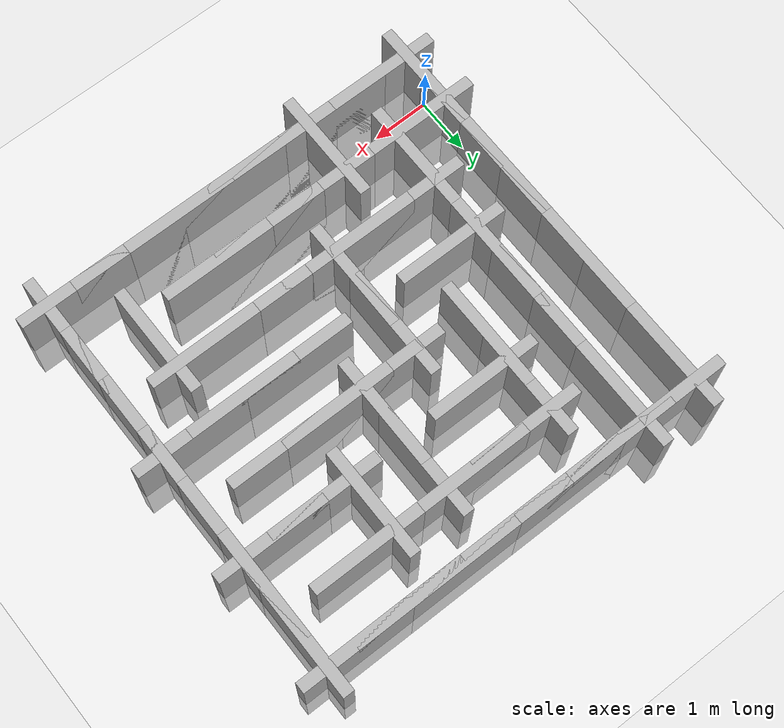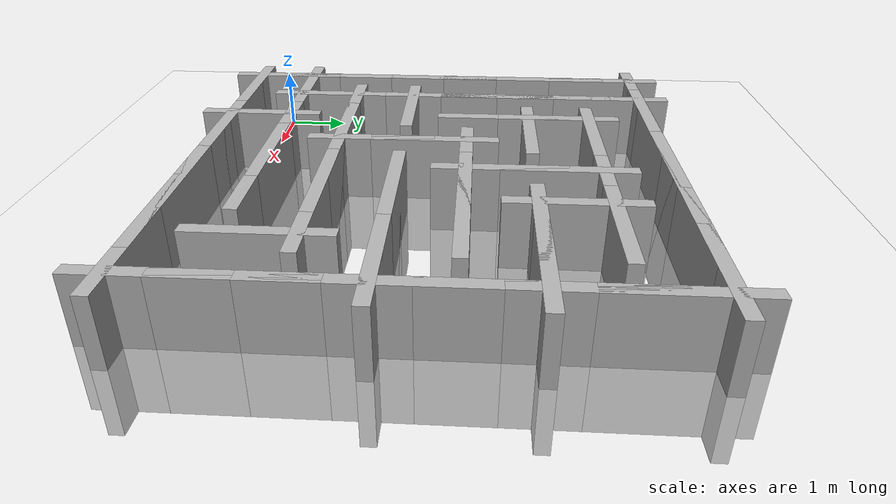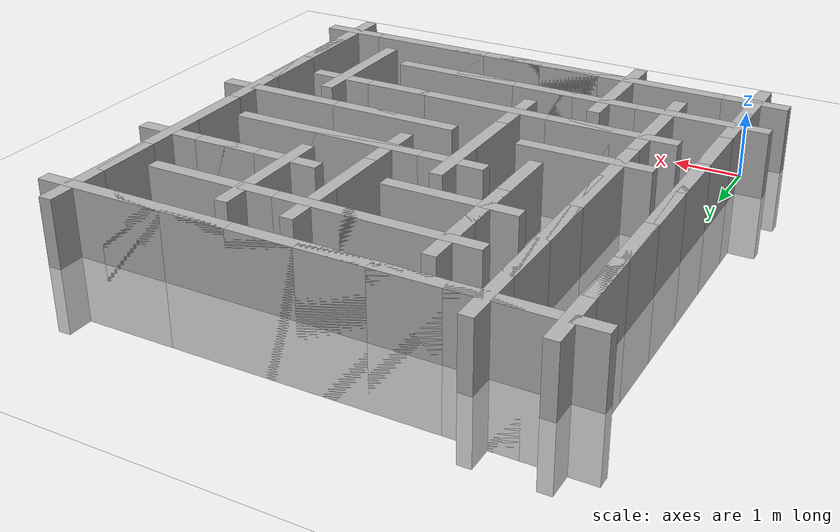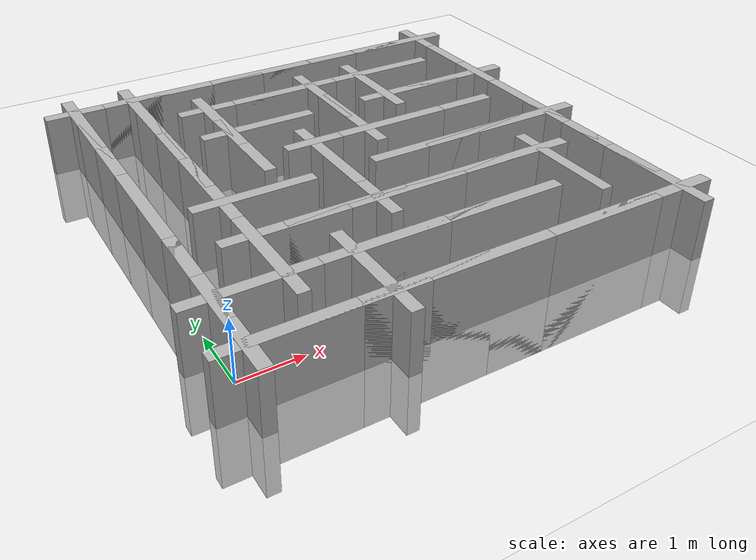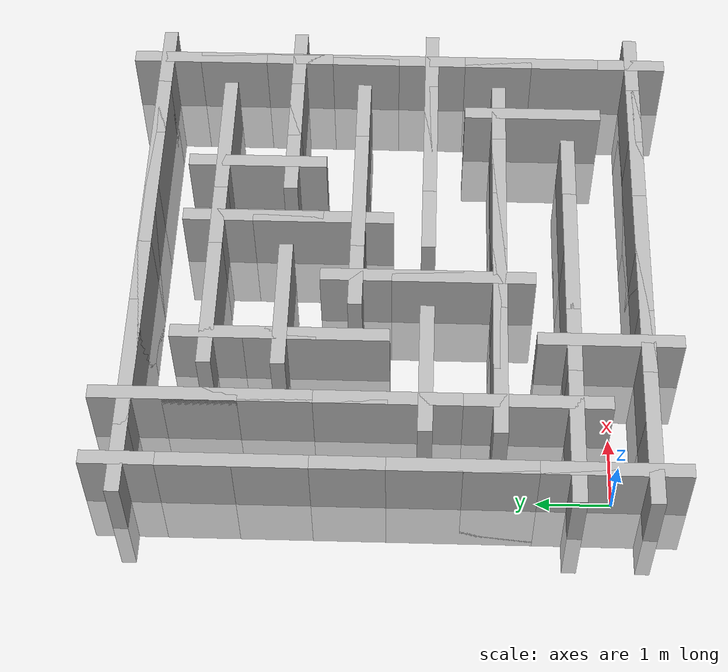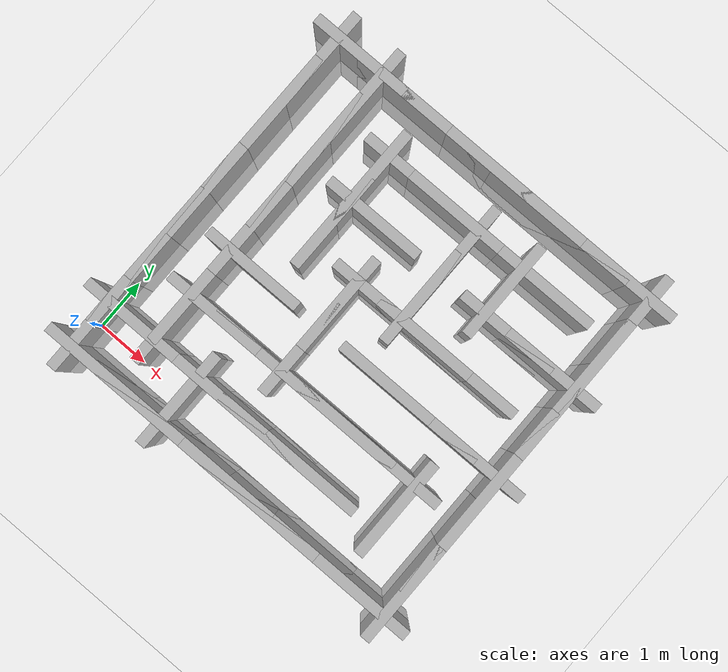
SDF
<?xml version="1.0" ?>
<sdf version="1.10">
  <world name='maze_world'>
    <plugin
      filename="gz-sim-physics-system"
      name="gz::sim::systems::Physics">
    </plugin>

    <plugin
      filename="gz-sim-user-commands-system"
      name="gz::sim::systems::UserCommands">
    </plugin>

    <plugin
      filename="gz-sim-scene-broadcaster-system"
      name="gz::sim::systems::SceneBroadcaster">
    </plugin>
    <plugin
        filename="libgz-sim-sensors-system.so"
        name="gz::sim::systems::Sensors">
    </plugin>
    <plugin
        filename="libgz-sim-imu-system.so"
        name="gz::sim::systems::Imu">
    </plugin>
    <plugin
        filename="libgz-sim-navsat-system.so"
        name="gz::sim::systems::NavSat">
    </plugin>

    <!-- Ground plane -->
    <model name="ground_plane">
      <static>true</static>
      <link name="link">
        <collision name="collision">
          <geometry>
            <plane><normal>0 0 1</normal></plane>
          </geometry>
        </collision>
        <visual name="visual">
          <geometry>
            <plane>
              <normal>0 0 1</normal>
              <size>60 60</size>
            </plane>
          </geometry>
          <material>
            <diffuse>1.0 1.0 1.0 1</diffuse>
          </material>
        </visual>
      </link>
    </model>

    <model name='Maze_ng'>
    <static>true</static>
	<pose>0 0 0 0 0 0</pose>

	<link name='Wall_0_0_0'>
		<pose>0 0 0 0 0 -1.570795</pose>
		<self_collide>0</self_collide>
		<kinematic>0</kinematic>
		<visual name='Wall_Visual'>
			<pose>0 0 0 0 0 0 </pose>
			<geometry>
				<box>
					<size>2 0.2 2</size>
				</box>
			</geometry>
			<cast_shadows>1</cast_shadows>
			<material><diffuse>0.7 0.7 0.7 1</diffuse></material>
		</visual>
		<collision name='Wall_Collision'>
			<laser_retro>0</laser_retro>
			<max_contacts>10</max_contacts>
			<pose>0 0 0 0 -0 0</pose>
			<geometry>
				<box>
					<size>2 0.2 2</size>
				</box>
			</geometry>
		</collision>
	</link>

	<link name='Wall_0_0_3'>
		<pose>0.5 -0.5 0 0 0 0</pose>
		<self_collide>0</self_collide>
		<kinematic>0</kinematic>
		<visual name='Wall_Visual'>
			<pose>0 0 0 0 0 0 </pose>
			<geometry>
				<box>
					<size>2 0.2 2</size>
				</box>
			</geometry>
			<cast_shadows>1</cast_shadows>
			<material><diffuse>0.7 0.7 0.7 1</diffuse></material>
		</visual>
		<collision name='Wall_Collision'>
			<laser_retro>0</laser_retro>
			<max_contacts>10</max_contacts>
			<pose>0 0 0 0 -0 0</pose>
			<geometry>
				<box>
					<size>2 0.2 2</size>
				</box>
			</geometry>
		</collision>
	</link>

	<link name='Wall_0_1_0'>
		<pose>0 1 0 0 0 -1.570795</pose>
		<self_collide>0</self_collide>
		<kinematic>0</kinematic>
		<visual name='Wall_Visual'>
			<pose>0 0 0 0 0 0 </pose>
			<geometry>
				<box>
					<size>2 0.2 2</size>
				</box>
			</geometry>
			<cast_shadows>1</cast_shadows>
			<material><diffuse>0.7 0.7 0.7 1</diffuse></material>
		</visual>
		<collision name='Wall_Collision'>
			<laser_retro>0</laser_retro>
			<max_contacts>10</max_contacts>
			<pose>0 0 0 0 -0 0</pose>
			<geometry>
				<box>
					<size>2 0.2 2</size>
				</box>
			</geometry>
		</collision>
	</link>

	<link name='Wall_0_1_3'>
		<pose>0.5 0.5 0 0 0 0</pose>
		<self_collide>0</self_collide>
		<kinematic>0</kinematic>
		<visual name='Wall_Visual'>
			<pose>0 0 0 0 0 0 </pose>
			<geometry>
				<box>
					<size>2 0.2 2</size>
				</box>
			</geometry>
			<cast_shadows>1</cast_shadows>
			<material><diffuse>0.7 0.7 0.7 1</diffuse></material>
		</visual>
		<collision name='Wall_Collision'>
			<laser_retro>0</laser_retro>
			<max_contacts>10</max_contacts>
			<pose>0 0 0 0 -0 0</pose>
			<geometry>
				<box>
					<size>2 0.2 2</size>
				</box>
			</geometry>
		</collision>
	</link>

	<link name='Wall_0_2_0'>
		<pose>0 2 0 0 0 -1.570795</pose>
		<self_collide>0</self_collide>
		<kinematic>0</kinematic>
		<visual name='Wall_Visual'>
			<pose>0 0 0 0 0 0 </pose>
			<geometry>
				<box>
					<size>2 0.2 2</size>
				</box>
			</geometry>
			<cast_shadows>1</cast_shadows>
			<material><diffuse>0.7 0.7 0.7 1</diffuse></material>
		</visual>
		<collision name='Wall_Collision'>
			<laser_retro>0</laser_retro>
			<max_contacts>10</max_contacts>
			<pose>0 0 0 0 -0 0</pose>
			<geometry>
				<box>
					<size>2 0.2 2</size>
				</box>
			</geometry>
		</collision>
	</link>

	<link name='Wall_0_3_0'>
		<pose>0 3 0 0 0 -1.570795</pose>
		<self_collide>0</self_collide>
		<kinematic>0</kinematic>
		<visual name='Wall_Visual'>
			<pose>0 0 0 0 0 0 </pose>
			<geometry>
				<box>
					<size>2 0.2 2</size>
				</box>
			</geometry>
			<cast_shadows>1</cast_shadows>
			<material><diffuse>0.7 0.7 0.7 1</diffuse></material>
		</visual>
		<collision name='Wall_Collision'>
			<laser_retro>0</laser_retro>
			<max_contacts>10</max_contacts>
			<pose>0 0 0 0 -0 0</pose>
			<geometry>
				<box>
					<size>2 0.2 2</size>
				</box>
			</geometry>
		</collision>
	</link>

	<link name='Wall_0_4_0'>
		<pose>0 4 0 0 0 -1.570795</pose>
		<self_collide>0</self_collide>
		<kinematic>0</kinematic>
		<visual name='Wall_Visual'>
			<pose>0 0 0 0 0 0 </pose>
			<geometry>
				<box>
					<size>2 0.2 2</size>
				</box>
			</geometry>
			<cast_shadows>1</cast_shadows>
			<material><diffuse>0.7 0.7 0.7 1</diffuse></material>
		</visual>
		<collision name='Wall_Collision'>
			<laser_retro>0</laser_retro>
			<max_contacts>10</max_contacts>
			<pose>0 0 0 0 -0 0</pose>
			<geometry>
				<box>
					<size>2 0.2 2</size>
				</box>
			</geometry>
		</collision>
	</link>

	<link name='Wall_0_5_0'>
		<pose>0 5 0 0 0 -1.570795</pose>
		<self_collide>0</self_collide>
		<kinematic>0</kinematic>
		<visual name='Wall_Visual'>
			<pose>0 0 0 0 0 0 </pose>
			<geometry>
				<box>
					<size>2 0.2 2</size>
				</box>
			</geometry>
			<cast_shadows>1</cast_shadows>
			<material><diffuse>0.7 0.7 0.7 1</diffuse></material>
		</visual>
		<collision name='Wall_Collision'>
			<laser_retro>0</laser_retro>
			<max_contacts>10</max_contacts>
			<pose>0 0 0 0 -0 0</pose>
			<geometry>
				<box>
					<size>2 0.2 2</size>
				</box>
			</geometry>
		</collision>
	</link>

	<link name='Wall_0_6_0'>
		<pose>0 6 0 0 0 -1.570795</pose>
		<self_collide>0</self_collide>
		<kinematic>0</kinematic>
		<visual name='Wall_Visual'>
			<pose>0 0 0 0 0 0 </pose>
			<geometry>
				<box>
					<size>2 0.2 2</size>
				</box>
			</geometry>
			<cast_shadows>1</cast_shadows>
			<material><diffuse>0.7 0.7 0.7 1</diffuse></material>
		</visual>
		<collision name='Wall_Collision'>
			<laser_retro>0</laser_retro>
			<max_contacts>10</max_contacts>
			<pose>0 0 0 0 -0 0</pose>
			<geometry>
				<box>
					<size>2 0.2 2</size>
				</box>
			</geometry>
		</collision>
	</link>

	<link name='Wall_0_6_1'>
		<pose>0.5 6.5 0 0 0 0</pose>
		<self_collide>0</self_collide>
		<kinematic>0</kinematic>
		<visual name='Wall_Visual'>
			<pose>0 0 0 0 0 0 </pose>
			<geometry>
				<box>
					<size>2 0.2 2</size>
				</box>
			</geometry>
			<cast_shadows>1</cast_shadows>
			<material><diffuse>0.7 0.7 0.7 1</diffuse></material>
		</visual>
		<collision name='Wall_Collision'>
			<laser_retro>0</laser_retro>
			<max_contacts>10</max_contacts>
			<pose>0 0 0 0 -0 0</pose>
			<geometry>
				<box>
					<size>2 0.2 2</size>
				</box>
			</geometry>
		</collision>
	</link>

	<link name='Wall_1_0_3'>
		<pose>1.5 -0.5 0 0 0 0</pose>
		<self_collide>0</self_collide>
		<kinematic>0</kinematic>
		<visual name='Wall_Visual'>
			<pose>0 0 0 0 0 0 </pose>
			<geometry>
				<box>
					<size>2 0.2 2</size>
				</box>
			</geometry>
			<cast_shadows>1</cast_shadows>
			<material><diffuse>0.7 0.7 0.7 1</diffuse></material>
		</visual>
		<collision name='Wall_Collision'>
			<laser_retro>0</laser_retro>
			<max_contacts>10</max_contacts>
			<pose>0 0 0 0 -0 0</pose>
			<geometry>
				<box>
					<size>2 0.2 2</size>
				</box>
			</geometry>
		</collision>
	</link>

	<link name='Wall_1_1_0'>
		<pose>1 1 0 0 0 -1.570795</pose>
		<self_collide>0</self_collide>
		<kinematic>0</kinematic>
		<visual name='Wall_Visual'>
			<pose>0 0 0 0 0 0 </pose>
			<geometry>
				<box>
					<size>2 0.2 2</size>
				</box>
			</geometry>
			<cast_shadows>1</cast_shadows>
			<material><diffuse>0.7 0.7 0.7 1</diffuse></material>
		</visual>

		<collision name='Wall_Collision'>
			<laser_retro>0</laser_retro>
			<max_contacts>10</max_contacts>
			<pose>0 0 0 0 -0 0</pose>
			<geometry>
				<box>
					<size>2 0.2 2</size>
				</box>
			</geometry>
		</collision>
	</link>

	<link name='Wall_1_2_3'>
		<pose>1.5 1.5 0 0 0 0</pose>
		<self_collide>0</self_collide>
		<kinematic>0</kinematic>
		<visual name='Wall_Visual'>
			<pose>0 0 0 0 0 0 </pose>
			<geometry>
				<box>
					<size>2 0.2 2</size>
				</box>
			</geometry>
			<cast_shadows>1</cast_shadows>
			<material><diffuse>0.7 0.7 0.7 1</diffuse></material>
		</visual>

		<collision name='Wall_Collision'>
			<laser_retro>0</laser_retro>
			<max_contacts>10</max_contacts>
			<pose>0 0 0 0 -0 0</pose>
			<geometry>
				<box>
					<size>2 0.2 2</size>
				</box>
			</geometry>
		</collision>
	</link>

	<link name='Wall_1_3_0'>
		<pose>1 3 0 0 0 -1.570795</pose>
		<self_collide>0</self_collide>
		<kinematic>0</kinematic>
		<visual name='Wall_Visual'>
			<pose>0 0 0 0 0 0 </pose>
			<geometry>
				<box>
					<size>2 0.2 2</size>
				</box>
			</geometry>
			<cast_shadows>1</cast_shadows>
			<material><diffuse>0.7 0.7 0.7 1</diffuse></material>
		</visual>
		<collision name='Wall_Collision'>
			<laser_retro>0</laser_retro>
			<max_contacts>10</max_contacts>
			<pose>0 0 0 0 -0 0</pose>
			<geometry>
				<box>
					<size>2 0.2 2</size>
				</box>
			</geometry>
		</collision>
	</link>

	<link name='Wall_1_3_3'>
		<pose>1.5 2.5 0 0 0 0</pose>
		<self_collide>0</self_collide>
		<kinematic>0</kinematic>
		<visual name='Wall_Visual'>
			<pose>0 0 0 0 0 0 </pose>
			<geometry>
				<box>
					<size>2 0.2 2</size>
				</box>
			</geometry>
			<cast_shadows>1</cast_shadows>
			<material><diffuse>0.7 0.7 0.7 1</diffuse></material>
		</visual>
		<collision name='Wall_Collision'>
			<laser_retro>0</laser_retro>
			<max_contacts>10</max_contacts>
			<pose>0 0 0 0 -0 0</pose>
			<geometry>
				<box>
					<size>2 0.2 2</size>
				</box>
			</geometry>
		</collision>
	</link>

	<link name='Wall_1_4_0'>
		<pose>1 4 0 0 0 -1.570795</pose>
		<self_collide>0</self_collide>
		<kinematic>0</kinematic>
		<visual name='Wall_Visual'>
			<pose>0 0 0 0 0 0 </pose>
			<geometry>
				<box>
					<size>2 0.2 2</size>
				</box>
			</geometry>
			<cast_shadows>1</cast_shadows>
			<material><diffuse>0.7 0.7 0.7 1</diffuse></material>
		</visual>
		<collision name='Wall_Collision'>
			<laser_retro>0</laser_retro>
			<max_contacts>10</max_contacts>
			<pose>0 0 0 0 -0 0</pose>
			<geometry>
				<box>
					<size>2 0.2 2</size>
				</box>
			</geometry>
		</collision>
	</link>

	<link name='Wall_1_5_0'>
		<pose>1 5 0 0 0 -1.570795</pose>
		<self_collide>0</self_collide>
		<kinematic>0</kinematic>
		<visual name='Wall_Visual'>
			<pose>0 0 0 0 0 0 </pose>
			<geometry>
				<box>
					<size>2 0.2 2</size>
				</box>
			</geometry>
			<cast_shadows>1</cast_shadows>
			<material><diffuse>0.7 0.7 0.7 1</diffuse></material>
		</visual>
		<collision name='Wall_Collision'>
			<laser_retro>0</laser_retro>
			<max_contacts>10</max_contacts>
			<pose>0 0 0 0 -0 0</pose>
			<geometry>
				<box>
					<size>2 0.2 2</size>
				</box>
			</geometry>
		</collision>
	</link>

	<link name='Wall_1_6_0'>
		<pose>1 6 0 0 0 -1.570795</pose>
		<self_collide>0</self_collide>
		<kinematic>0</kinematic>
		<visual name='Wall_Visual'>
			<pose>0 0 0 0 0 0 </pose>
			<geometry>
				<box>
					<size>2 0.2 2</size>
				</box>
			</geometry>
			<cast_shadows>1</cast_shadows>
			<material><diffuse>0.7 0.7 0.7 1</diffuse></material>
		</visual>
		<collision name='Wall_Collision'>
			<laser_retro>0</laser_retro>
			<max_contacts>10</max_contacts>
			<pose>0 0 0 0 -0 0</pose>
			<geometry>
				<box>
					<size>2 0.2 2</size>
				</box>
			</geometry>
		</collision>
	</link>

	<link name='Wall_1_6_1'>
		<pose>1.5 6.5 0 0 0 0</pose>
		<self_collide>0</self_collide>
		<kinematic>0</kinematic>
		<visual name='Wall_Visual'>
			<pose>0 0 0 0 0 0 </pose>
			<geometry>
				<box>
					<size>2 0.2 2</size>
				</box>
			</geometry>
			<cast_shadows>1</cast_shadows>
			<material><diffuse>0.7 0.7 0.7 1</diffuse></material>
		</visual>
		<collision name='Wall_Collision'>
			<laser_retro>0</laser_retro>
			<max_contacts>10</max_contacts>
			<pose>0 0 0 0 -0 0</pose>
			<geometry>
				<box>
					<size>2 0.2 2</size>
				</box>
			</geometry>
		</collision>
	</link>

	<link name='Wall_2_0_0'>
		<pose>2 0 0 0 0 -1.570795</pose>
		<self_collide>0</self_collide>
		<kinematic>0</kinematic>
		<visual name='Wall_Visual'>
			<pose>0 0 0 0 0 0 </pose>
			<geometry>
				<box>
					<size>2 0.2 2</size>
				</box>
			</geometry>
			<cast_shadows>1</cast_shadows>
			<material><diffuse>0.7 0.7 0.7 1</diffuse></material>
		</visual>
		<collision name='Wall_Collision'>
			<laser_retro>0</laser_retro>
			<max_contacts>10</max_contacts>
			<pose>0 0 0 0 -0 0</pose>
			<geometry>
				<box>
					<size>2 0.2 2</size>
				</box>
			</geometry>
		</collision>
	</link>

	<link name='Wall_2_0_3'>
		<pose>2.5 -0.5 0 0 0 0</pose>
		<self_collide>0</self_collide>
		<kinematic>0</kinematic>
		<visual name='Wall_Visual'>
			<pose>0 0 0 0 0 0 </pose>
			<geometry>
				<box>
					<size>2 0.2 2</size>
				</box>
			</geometry>
			<cast_shadows>1</cast_shadows>
			<material><diffuse>0.7 0.7 0.7 1</diffuse></material>
		</visual>
		<collision name='Wall_Collision'>
			<laser_retro>0</laser_retro>
			<max_contacts>10</max_contacts>
			<pose>0 0 0 0 -0 0</pose>
			<geometry>
				<box>
					<size>2 0.2 2</size>
				</box>
			</geometry>
		</collision>
	</link>

	<link name='Wall_2_1_3'>
		<pose>2.5 0.5 0 0 0 0</pose>
		<self_collide>0</self_collide>
		<kinematic>0</kinematic>
		<visual name='Wall_Visual'>
			<pose>0 0 0 0 0 0 </pose>
			<geometry>
				<box>
					<size>2 0.2 2</size>
				</box>
			</geometry>
			<cast_shadows>1</cast_shadows>
			<material><diffuse>0.7 0.7 0.7 1</diffuse></material>
		</visual>
		<collision name='Wall_Collision'>
			<laser_retro>0</laser_retro>
			<max_contacts>10</max_contacts>
			<pose>0 0 0 0 -0 0</pose>
			<geometry>
				<box>
					<size>2 0.2 2</size>
				</box>
			</geometry>
		</collision>
	</link>

	<link name='Wall_2_2_3'>
		<pose>2.5 1.5 0 0 0 0</pose>
		<self_collide>0</self_collide>
		<kinematic>0</kinematic>
		<visual name='Wall_Visual'>
			<pose>0 0 0 0 0 0 </pose>
			<geometry>
				<box>
					<size>2 0.2 2</size>
				</box>
			</geometry>
			<cast_shadows>1</cast_shadows>
			<material><diffuse>0.7 0.7 0.7 1</diffuse></material>
		</visual>
		<collision name='Wall_Collision'>
			<laser_retro>0</laser_retro>
			<max_contacts>10</max_contacts>
			<pose>0 0 0 0 -0 0</pose>
			<geometry>
				<box>
					<size>2 0.2 2</size>
				</box>
			</geometry>
		</collision>
	</link>

	<link name='Wall_2_4_0'>
		<pose>2 4 0 0 0 -1.570795</pose>
		<self_collide>0</self_collide>
		<kinematic>0</kinematic>
		<visual name='Wall_Visual'>
			<pose>0 0 0 0 0 0 </pose>
			<geometry>
				<box>
					<size>2 0.2 2</size>
				</box>
			</geometry>
			<cast_shadows>1</cast_shadows>
			<material><diffuse>0.7 0.7 0.7 1</diffuse></material>
		</visual>
		<collision name='Wall_Collision'>
			<laser_retro>0</laser_retro>
			<max_contacts>10</max_contacts>
			<pose>0 0 0 0 -0 0</pose>
			<geometry>
				<box>
					<size>2 0.2 2</size>
				</box>
			</geometry>
		</collision>
	</link>

	<link name='Wall_2_5_0'>
		<pose>2 5 0 0 0 -1.570795</pose>
		<self_collide>0</self_collide>
		<kinematic>0</kinematic>
		<visual name='Wall_Visual'>
			<pose>0 0 0 0 0 0 </pose>
			<geometry>
				<box>
					<size>2 0.2 2</size>
				</box>
			</geometry>
			<cast_shadows>1</cast_shadows>
			<material><diffuse>0.7 0.7 0.7 1</diffuse></material>
		</visual>
		<collision name='Wall_Collision'>
			<laser_retro>0</laser_retro>
			<max_contacts>10</max_contacts>
			<pose>0 0 0 0 -0 0</pose>
			<geometry>
				<box>
					<size>2 0.2 2</size>
				</box>
			</geometry>
		</collision>
	</link>

	<link name='Wall_2_5_3'>
		<pose>2.5 4.5 0 0 0 0</pose>
		<self_collide>0</self_collide>
		<kinematic>0</kinematic>
		<visual name='Wall_Visual'>
			<pose>0 0 0 0 0 0 </pose>
			<geometry>
				<box>
					<size>2 0.2 2</size>
				</box>
			</geometry>
			<cast_shadows>1</cast_shadows>
			<material><diffuse>0.7 0.7 0.7 1</diffuse></material>
		</visual>
		<collision name='Wall_Collision'>
			<laser_retro>0</laser_retro>
			<max_contacts>10</max_contacts>
			<pose>0 0 0 0 -0 0</pose>
			<geometry>
				<box>
					<size>2 0.2 2</size>
				</box>
			</geometry>
		</collision>
	</link>

	<link name='Wall_2_6_3'>
		<pose>2.5 5.5 0 0 0 0</pose>
		<self_collide>0</self_collide>
		<kinematic>0</kinematic>
		<visual name='Wall_Visual'>
			<pose>0 0 0 0 0 0 </pose>
			<geometry>
				<box>
					<size>2 0.2 2</size>
				</box>
			</geometry>
			<cast_shadows>1</cast_shadows>
			<material><diffuse>0.7 0.7 0.7 1</diffuse></material>
		</visual>
		<collision name='Wall_Collision'>
			<laser_retro>0</laser_retro>
			<max_contacts>10</max_contacts>
			<pose>0 0 0 0 -0 0</pose>
			<geometry>
				<box>
					<size>2 0.2 2</size>
				</box>
			</geometry>
		</collision>
	</link>

	<link name='Wall_2_6_1'>
		<pose>2.5 6.5 0 0 0 0</pose>
		<self_collide>0</self_collide>
		<kinematic>0</kinematic>
		<visual name='Wall_Visual'>
			<pose>0 0 0 0 0 0 </pose>
			<geometry>
				<box>
					<size>2 0.2 2</size>
				</box>
			</geometry>
			<cast_shadows>1</cast_shadows>
			<material><diffuse>0.7 0.7 0.7 1</diffuse></material>
		</visual>
		<collision name='Wall_Collision'>
			<laser_retro>0</laser_retro>
			<max_contacts>10</max_contacts>
			<pose>0 0 0 0 -0 0</pose>
			<geometry>
				<box>
					<size>2 0.2 2</size>
				</box>
			</geometry>
		</collision>
	</link>

	<link name='Wall_3_0_3'>
		<pose>3.5 -0.5 0 0 0 0</pose>
		<self_collide>0</self_collide>
		<kinematic>0</kinematic>
		<visual name='Wall_Visual'>
			<pose>0 0 0 0 0 0 </pose>
			<geometry>
				<box>
					<size>2 0.2 2</size>
				</box>
			</geometry>
			<cast_shadows>1</cast_shadows>
			<material><diffuse>0.7 0.7 0.7 1</diffuse></material>
		</visual>
		<collision name='Wall_Collision'>
			<laser_retro>0</laser_retro>
			<max_contacts>10</max_contacts>
			<pose>0 0 0 0 -0 0</pose>
			<geometry>
				<box>
					<size>2 0.2 2</size>
				</box>
			</geometry>
		</collision>
	</link>

	<link name='Wall_3_1_3'>
		<pose>3.5 0.5 0 0 0 0</pose>
		<self_collide>0</self_collide>
		<kinematic>0</kinematic>
		<visual name='Wall_Visual'>
			<pose>0 0 0 0 0 0 </pose>
			<geometry>
				<box>
					<size>2 0.2 2</size>
				</box>
			</geometry>
			<cast_shadows>1</cast_shadows>
			<material><diffuse>0.7 0.7 0.7 1</diffuse></material>
		</visual>
		<collision name='Wall_Collision'>
			<laser_retro>0</laser_retro>
			<max_contacts>10</max_contacts>
			<pose>0 0 0 0 -0 0</pose>
			<geometry>
				<box>
					<size>2 0.2 2</size>
				</box>
			</geometry>
		</collision>
	</link>

	<link name='Wall_3_2_0'>
		<pose>3 2 0 0 0 -1.570795</pose>
		<self_collide>0</self_collide>
		<kinematic>0</kinematic>
		<visual name='Wall_Visual'>
			<pose>0 0 0 0 0 0 </pose>
			<geometry>
				<box>
					<size>2 0.2 2</size>
				</box>
			</geometry>
			<cast_shadows>1</cast_shadows>
			<material><diffuse>0.7 0.7 0.7 1</diffuse></material>
		</visual>
		<collision name='Wall_Collision'>
			<laser_retro>0</laser_retro>
			<max_contacts>10</max_contacts>
			<pose>0 0 0 0 -0 0</pose>
			<geometry>
				<box>
					<size>2 0.2 2</size>
				</box>
			</geometry>
		</collision>
	</link>

	<link name='Wall_3_2_3'>
		<pose>3.5 1.5 0 0 0 0</pose>
		<self_collide>0</self_collide>
		<kinematic>0</kinematic>
		<visual name='Wall_Visual'>
			<pose>0 0 0 0 0 0 </pose>
			<geometry>
				<box>
					<size>2 0.2 2</size>
				</box>
			</geometry>
			<cast_shadows>1</cast_shadows>
			<material><diffuse>0.7 0.7 0.7 1</diffuse></material>
		</visual>
		<collision name='Wall_Collision'>
			<laser_retro>0</laser_retro>
			<max_contacts>10</max_contacts>
			<pose>0 0 0 0 -0 0</pose>
			<geometry>
				<box>
					<size>2 0.2 2</size>
				</box>
			</geometry>
		</collision>
	</link>

	<link name='Wall_3_3_0'>
		<pose>3 3 0 0 0 -1.570795</pose>
		<self_collide>0</self_collide>
		<kinematic>0</kinematic>
		<visual name='Wall_Visual'>
			<pose>0 0 0 0 0 0 </pose>
			<geometry>
				<box>
					<size>2 0.2 2</size>
				</box>
			</geometry>
			<cast_shadows>1</cast_shadows>
			<material><diffuse>0.7 0.7 0.7 1</diffuse></material>
		</visual>
		<collision name='Wall_Collision'>
			<laser_retro>0</laser_retro>
			<max_contacts>10</max_contacts>
			<pose>0 0 0 0 -0 0</pose>
			<geometry>
				<box>
					<size>2 0.2 2</size>
				</box>
			</geometry>
		</collision>
	</link>

	<link name='Wall_3_4_3'>
		<pose>3.5 3.5 0 0 0 0</pose>
		<self_collide>0</self_collide>
		<kinematic>0</kinematic>
		<visual name='Wall_Visual'>
			<pose>0 0 0 0 0 0 </pose>
			<geometry>
				<box>
					<size>2 0.2 2</size>
				</box>
			</geometry>
			<cast_shadows>1</cast_shadows>
			<material><diffuse>0.7 0.7 0.7 1</diffuse></material>
		</visual>
		<collision name='Wall_Collision'>
			<laser_retro>0</laser_retro>
			<max_contacts>10</max_contacts>
			<pose>0 0 0 0 -0 0</pose>
			<geometry>
				<box>
					<size>2 0.2 2</size>
				</box>
			</geometry>
		</collision>
	</link>

	<link name='Wall_3_6_3'>
		<pose>3.5 5.5 0 0 0 0</pose>
		<self_collide>0</self_collide>
		<kinematic>0</kinematic>
		<visual name='Wall_Visual'>
			<pose>0 0 0 0 0 0 </pose>
			<geometry>
				<box>
					<size>2 0.2 2</size>
				</box>
			</geometry>
			<cast_shadows>1</cast_shadows>
			<material><diffuse>0.7 0.7 0.7 1</diffuse></material>
		</visual>
		<collision name='Wall_Collision'>
			<laser_retro>0</laser_retro>
			<max_contacts>10</max_contacts>
			<pose>0 0 0 0 -0 0</pose>
			<geometry>
				<box>
					<size>2 0.2 2</size>
				</box>
			</geometry>
		</collision>
	</link>

	<link name='Wall_3_6_1'>
		<pose>3.5 6.5 0 0 0 0</pose>
		<self_collide>0</self_collide>
		<kinematic>0</kinematic>
		<visual name='Wall_Visual'>
			<pose>0 0 0 0 0 0 </pose>
			<geometry>
				<box>
					<size>2 0.2 2</size>
				</box>
			</geometry>
			<cast_shadows>1</cast_shadows>
			<material><diffuse>0.7 0.7 0.7 1</diffuse></material>
		</visual>
		<collision name='Wall_Collision'>
			<laser_retro>0</laser_retro>
			<max_contacts>10</max_contacts>
			<pose>0 0 0 0 -0 0</pose>
			<geometry>
				<box>
					<size>2 0.2 2</size>
				</box>
			</geometry>
		</collision>
	</link>

	<link name='Wall_4_0_3'>
		<pose>4.5 -0.5 0 0 0 0</pose>
		<self_collide>0</self_collide>
		<kinematic>0</kinematic>
		<visual name='Wall_Visual'>
			<pose>0 0 0 0 0 0 </pose>
			<geometry>
				<box>
					<size>2 0.2 2</size>
				</box>
			</geometry>
			<cast_shadows>1</cast_shadows>
			<material><diffuse>0.7 0.7 0.7 1</diffuse></material>
		</visual>
		<collision name='Wall_Collision'>
			<laser_retro>0</laser_retro>
			<max_contacts>10</max_contacts>
			<pose>0 0 0 0 -0 0</pose>
			<geometry>
				<box>
					<size>2 0.2 2</size>
				</box>
			</geometry>
		</collision>
	</link>

	<link name='Wall_4_1_3'>
		<pose>4.5 0.5 0 0 0 0</pose>
		<self_collide>0</self_collide>
		<kinematic>0</kinematic>
		<visual name='Wall_Visual'>
			<pose>0 0 0 0 0 0 </pose>
			<geometry>
				<box>
					<size>2 0.2 2</size>
				</box>
			</geometry>
			<cast_shadows>1</cast_shadows>
			<material><diffuse>0.7 0.7 0.7 1</diffuse></material>
		</visual>
		<collision name='Wall_Collision'>
			<laser_retro>0</laser_retro>
			<max_contacts>10</max_contacts>
			<pose>0 0 0 0 -0 0</pose>
			<geometry>
				<box>
					<size>2 0.2 2</size>
				</box>
			</geometry>
		</collision>
	</link>

	<link name='Wall_4_2_3'>
		<pose>4.5 1.5 0 0 0 0</pose>
		<self_collide>0</self_collide>
		<kinematic>0</kinematic>
		<visual name='Wall_Visual'>
			<pose>0 0 0 0 0 0 </pose>
			<geometry>
				<box>
					<size>2 0.2 2</size>
				</box>
			</geometry>
			<cast_shadows>1</cast_shadows>
			<material><diffuse>0.7 0.7 0.7 1</diffuse></material>
		</visual>
		<collision name='Wall_Collision'>
			<laser_retro>0</laser_retro>
			<max_contacts>10</max_contacts>
			<pose>0 0 0 0 -0 0</pose>
			<geometry>
				<box>
					<size>2 0.2 2</size>
				</box>
			</geometry>
		</collision>
	</link>

	<link name='Wall_4_3_3'>
		<pose>4.5 2.5 0 0 0 0</pose>
		<self_collide>0</self_collide>
		<kinematic>0</kinematic>
		<visual name='Wall_Visual'>
			<pose>0 0 0 0 0 0 </pose>
			<geometry>
				<box>
					<size>2 0.2 2</size>
				</box>
			</geometry>
			<cast_shadows>1</cast_shadows>
			<material><diffuse>0.7 0.7 0.7 1</diffuse></material>
		</visual>
		<collision name='Wall_Collision'>
			<laser_retro>0</laser_retro>
			<max_contacts>10</max_contacts>
			<pose>0 0 0 0 -0 0</pose>
			<geometry>
				<box>
					<size>2 0.2 2</size>
				</box>
			</geometry>
		</collision>
	</link>

	<link name='Wall_4_4_0'>
		<pose>4 4 0 0 0 -1.570795</pose>
		<self_collide>0</self_collide>
		<kinematic>0</kinematic>
		<visual name='Wall_Visual'>
			<pose>0 0 0 0 0 0 </pose>
			<geometry>
				<box>
					<size>2 0.2 2</size>
				</box>
			</geometry>
			<cast_shadows>1</cast_shadows>
			<material><diffuse>0.7 0.7 0.7 1</diffuse></material>
		</visual>
		<collision name='Wall_Collision'>
			<laser_retro>0</laser_retro>
			<max_contacts>10</max_contacts>
			<pose>0 0 0 0 -0 0</pose>
			<geometry>
				<box>
					<size>2 0.2 2</size>
				</box>
			</geometry>
		</collision>
	</link>

	<link name='Wall_4_4_3'>
		<pose>4.5 3.5 0 0 0 0</pose>
		<self_collide>0</self_collide>
		<kinematic>0</kinematic>
		<visual name='Wall_Visual'>
			<pose>0 0 0 0 0 0 </pose>
			<geometry>
				<box>
					<size>2 0.2 2</size>
				</box>
			</geometry>
			<cast_shadows>1</cast_shadows>
			<material><diffuse>0.7 0.7 0.7 1</diffuse></material>
		</visual>
		<collision name='Wall_Collision'>
			<laser_retro>0</laser_retro>
			<max_contacts>10</max_contacts>
			<pose>0 0 0 0 -0 0</pose>
			<geometry>
				<box>
					<size>2 0.2 2</size>
				</box>
			</geometry>
		</collision>
	</link>

	<link name='Wall_4_5_0'>
		<pose>4 5 0 0 0 -1.570795</pose>
		<self_collide>0</self_collide>
		<kinematic>0</kinematic>
		<visual name='Wall_Visual'>
			<pose>0 0 0 0 0 0 </pose>
			<geometry>
				<box>
					<size>2 0.2 2</size>
				</box>
			</geometry>
			<cast_shadows>1</cast_shadows>
			<material><diffuse>0.7 0.7 0.7 1</diffuse></material>
		</visual>
		<collision name='Wall_Collision'>
			<laser_retro>0</laser_retro>
			<max_contacts>10</max_contacts>
			<pose>0 0 0 0 -0 0</pose>
			<geometry>
				<box>
					<size>2 0.2 2</size>
				</box>
			</geometry>
		</collision>
	</link>

	<link name='Wall_4_6_1'>
		<pose>4.5 6.5 0 0 0 0</pose>
		<self_collide>0</self_collide>
		<kinematic>0</kinematic>
		<visual name='Wall_Visual'>
			<pose>0 0 0 0 0 0 </pose>
			<geometry>
				<box>
					<size>2 0.2 2</size>
				</box>
			</geometry>
			<cast_shadows>1</cast_shadows>
			<material><diffuse>0.7 0.7 0.7 1</diffuse></material>
		</visual>
		<collision name='Wall_Collision'>
			<laser_retro>0</laser_retro>
			<max_contacts>10</max_contacts>
			<pose>0 0 0 0 -0 0</pose>
			<geometry>
				<box>
					<size>2 0.2 2</size>
				</box>
			</geometry>
		</collision>
	</link>

	<link name='Wall_5_0_3'>
		<pose>5.5 -0.5 0 0 0 0</pose>
		<self_collide>0</self_collide>
		<kinematic>0</kinematic>
		<visual name='Wall_Visual'>
			<pose>0 0 0 0 0 0 </pose>
			<geometry>
				<box>
					<size>2 0.2 2</size>
				</box>
			</geometry>
			<cast_shadows>1</cast_shadows>
			<material><diffuse>0.7 0.7 0.7 1</diffuse></material>
		</visual>
		<collision name='Wall_Collision'>
			<laser_retro>0</laser_retro>
			<max_contacts>10</max_contacts>
			<pose>0 0 0 0 -0 0</pose>
			<geometry>
				<box>
					<size>2 0.2 2</size>
				</box>
			</geometry>
		</collision>
	</link>

	<link name='Wall_5_2_3'>
		<pose>5.5 1.5 0 0 0 0</pose>
		<self_collide>0</self_collide>
		<kinematic>0</kinematic>
		<visual name='Wall_Visual'>
			<pose>0 0 0 0 0 0 </pose>
			<geometry>
				<box>
					<size>2 0.2 2</size>
				</box>
			</geometry>
			<cast_shadows>1</cast_shadows>
			<material><diffuse>0.7 0.7 0.7 1</diffuse></material>
		</visual>
		<collision name='Wall_Collision'>
			<laser_retro>0</laser_retro>
			<max_contacts>10</max_contacts>
			<pose>0 0 0 0 -0 0</pose>
			<geometry>
				<box>
					<size>2 0.2 2</size>
				</box>
			</geometry>
		</collision>
	</link>

	<link name='Wall_5_3_3'>
		<pose>5.5 2.5 0 0 0 0</pose>
		<self_collide>0</self_collide>
		<kinematic>0</kinematic>
		<visual name='Wall_Visual'>
			<pose>0 0 0 0 0 0 </pose>
			<geometry>
				<box>
					<size>2 0.2 2</size>
				</box>
			</geometry>
			<cast_shadows>1</cast_shadows>
			<material><diffuse>0.7 0.7 0.7 1</diffuse></material>
		</visual>
		<collision name='Wall_Collision'>
			<laser_retro>0</laser_retro>
			<max_contacts>10</max_contacts>
			<pose>0 0 0 0 -0 0</pose>
			<geometry>
				<box>
					<size>2 0.2 2</size>
				</box>
			</geometry>
		</collision>
	</link>

	<link name='Wall_5_4_3'>
		<pose>5.5 3.5 0 0 0 0</pose>
		<self_collide>0</self_collide>
		<kinematic>0</kinematic>
		<visual name='Wall_Visual'>
			<pose>0 0 0 0 0 0 </pose>
			<geometry>
				<box>
					<size>2 0.2 2</size>
				</box>
			</geometry>
			<cast_shadows>1</cast_shadows>
			<material><diffuse>0.7 0.7 0.7 1</diffuse></material>
		</visual>
		<collision name='Wall_Collision'>
			<laser_retro>0</laser_retro>
			<max_contacts>10</max_contacts>
			<pose>0 0 0 0 -0 0</pose>
			<geometry>
				<box>
					<size>2 0.2 2</size>
				</box>
			</geometry>
		</collision>
	</link>

	<link name='Wall_5_5_0'>
		<pose>5 5 0 0 0 -1.570795</pose>
		<self_collide>0</self_collide>
		<kinematic>0</kinematic>
		<visual name='Wall_Visual'>
			<pose>0 0 0 0 0 0 </pose>
			<geometry>
				<box>
					<size>2 0.2 2</size>
				</box>
			</geometry>
			<cast_shadows>1</cast_shadows>
			<material><diffuse>0.7 0.7 0.7 1</diffuse></material>
		</visual>
		<collision name='Wall_Collision'>
			<laser_retro>0</laser_retro>
			<max_contacts>10</max_contacts>
			<pose>0 0 0 0 -0 0</pose>
			<geometry>
				<box>
					<size>2 0.2 2</size>
				</box>
			</geometry>
		</collision>
	</link>

	<link name='Wall_5_5_3'>
		<pose>5.5 4.5 0 0 0 0</pose>
		<self_collide>0</self_collide>
		<kinematic>0</kinematic>
		<visual name='Wall_Visual'>
			<pose>0 0 0 0 0 0 </pose>
			<geometry>
				<box>
					<size>2 0.2 2</size>
				</box>
			</geometry>
			<cast_shadows>1</cast_shadows>
			<material><diffuse>0.7 0.7 0.7 1</diffuse></material>
		</visual>
		<collision name='Wall_Collision'>
			<laser_retro>0</laser_retro>
			<max_contacts>10</max_contacts>
			<pose>0 0 0 0 -0 0</pose>
			<geometry>
				<box>
					<size>2 0.2 2</size>
				</box>
			</geometry>
		</collision>
	</link>

	<link name='Wall_5_6_3'>
		<pose>5.5 5.5 0 0 0 0</pose>
		<self_collide>0</self_collide>
		<kinematic>0</kinematic>
		<visual name='Wall_Visual'>
			<pose>0 0 0 0 0 0 </pose>
			<geometry>
				<box>
					<size>2 0.2 2</size>
				</box>
			</geometry>
			<cast_shadows>1</cast_shadows>
			<material><diffuse>0.7 0.7 0.7 1</diffuse></material>
		</visual>
		<collision name='Wall_Collision'>
			<laser_retro>0</laser_retro>
			<max_contacts>10</max_contacts>
			<pose>0 0 0 0 -0 0</pose>
			<geometry>
				<box>
					<size>2 0.2 2</size>
				</box>
			</geometry>
		</collision>
	</link>

	<link name='Wall_5_6_1'>
		<pose>5.5 6.5 0 0 0 0</pose>
		<self_collide>0</self_collide>
		<kinematic>0</kinematic>
		<visual name='Wall_Visual'>
			<pose>0 0 0 0 0 0 </pose>
			<geometry>
				<box>
					<size>2 0.2 2</size>
				</box>
			</geometry>
			<cast_shadows>1</cast_shadows>
			<material><diffuse>0.7 0.7 0.7 1</diffuse></material>
		</visual>
		<collision name='Wall_Collision'>
			<laser_retro>0</laser_retro>
			<max_contacts>10</max_contacts>
			<pose>0 0 0 0 -0 0</pose>
			<geometry>
				<box>
					<size>2 0.2 2</size>
				</box>
			</geometry>
		</collision>
	</link>

	<link name='Wall_6_0_3'>
		<pose>6.5 -0.5 0 0 0 0</pose>
		<self_collide>0</self_collide>
		<kinematic>0</kinematic>
		<visual name='Wall_Visual'>
			<pose>0 0 0 0 0 0 </pose>
			<geometry>
				<box>
					<size>2 0.2 2</size>
				</box>
			</geometry>
			<cast_shadows>1</cast_shadows>
			<material><diffuse>0.7 0.7 0.7 1</diffuse></material>
		</visual>
		<collision name='Wall_Collision'>
			<laser_retro>0</laser_retro>
			<max_contacts>10</max_contacts>
			<pose>0 0 0 0 -0 0</pose>
			<geometry>
				<box>
					<size>2 0.2 2</size>
				</box>
			</geometry>
		</collision>
	</link>

	<link name='Wall_6_0_2'>
		<pose>7 0 0 0 0 -1.570795</pose>
		<self_collide>0</self_collide>
		<kinematic>0</kinematic>
		<visual name='Wall_Visual'>
			<pose>0 0 0 0 0 0 </pose>
			<geometry>
				<box>
					<size>2 0.2 2</size>
				</box>
			</geometry>
			<cast_shadows>1</cast_shadows>
			<material><diffuse>0.7 0.7 0.7 1</diffuse></material>
		</visual>
		<collision name='Wall_Collision'>
			<laser_retro>0</laser_retro>
			<max_contacts>10</max_contacts>
			<pose>0 0 0 0 -0 0</pose>
			<geometry>
				<box>
					<size>2 0.2 2</size>
				</box>
			</geometry>
		</collision>
	</link>

	<link name='Wall_6_1_0'>
		<pose>6 1 0 0 0 -1.570795</pose>
		<self_collide>0</self_collide>
		<kinematic>0</kinematic>
		<visual name='Wall_Visual'>
			<pose>0 0 0 0 0 0 </pose>
			<geometry>
				<box>
					<size>2 0.2 2</size>
				</box>
			</geometry>
			<cast_shadows>1</cast_shadows>
			<material><diffuse>0.7 0.7 0.7 1</diffuse></material>
		</visual>
		<collision name='Wall_Collision'>
			<laser_retro>0</laser_retro>
			<max_contacts>10</max_contacts>
			<pose>0 0 0 0 -0 0</pose>
			<geometry>
				<box>
					<size>2 0.2 2</size>
				</box>
			</geometry>
		</collision>
	</link>

	<link name='Wall_6_1_2'>
		<pose>7 1 0 0 0 -1.570795</pose>
		<self_collide>0</self_collide>
		<kinematic>0</kinematic>
		<visual name='Wall_Visual'>
			<pose>0 0 0 0 0 0 </pose>
			<geometry>
				<box>
					<size>2 0.2 2</size>
				</box>
			</geometry>
			<cast_shadows>1</cast_shadows>
			<material><diffuse>0.7 0.7 0.7 1</diffuse></material>
		</visual>
		<collision name='Wall_Collision'>
			<laser_retro>0</laser_retro>
			<max_contacts>10</max_contacts>
			<pose>0 0 0 0 -0 0</pose>
			<geometry>
				<box>
					<size>2 0.2 2</size>
				</box>
			</geometry>
		</collision>
	</link>

	<link name='Wall_6_2_2'>
		<pose>7 2 0 0 0 -1.570795</pose>
		<self_collide>0</self_collide>
		<kinematic>0</kinematic>
		<visual name='Wall_Visual'>
			<pose>0 0 0 0 0 0 </pose>
			<geometry>
				<box>
					<size>2 0.2 2</size>
				</box>
			</geometry>
			<cast_shadows>1</cast_shadows>
			<material><diffuse>0.7 0.7 0.7 1</diffuse></material>
		</visual>
		<collision name='Wall_Collision'>
			<laser_retro>0</laser_retro>
			<max_contacts>10</max_contacts>
			<pose>0 0 0 0 -0 0</pose>
			<geometry>
				<box>
					<size>2 0.2 2</size>
				</box>
			</geometry>
		</collision>
	</link>

	<link name='Wall_6_3_3'>
		<pose>6.5 2.5 0 0 0 0</pose>
		<self_collide>0</self_collide>
		<kinematic>0</kinematic>
		<visual name='Wall_Visual'>
			<pose>0 0 0 0 0 0 </pose>
			<geometry>
				<box>
					<size>2 0.2 2</size>
				</box>
			</geometry>
			<cast_shadows>1</cast_shadows>
			<material><diffuse>0.7 0.7 0.7 1</diffuse></material>
		</visual>
		<collision name='Wall_Collision'>
			<laser_retro>0</laser_retro>
			<max_contacts>10</max_contacts>
			<pose>0 0 0 0 -0 0</pose>
			<geometry>
				<box>
					<size>2 0.2 2</size>
				</box>
			</geometry>
		</collision>
	</link>

	<link name='Wall_6_3_2'>
		<pose>7 3 0 0 0 -1.570795</pose>
		<self_collide>0</self_collide>
		<kinematic>0</kinematic>
		<visual name='Wall_Visual'>
			<pose>0 0 0 0 0 0 </pose>
			<geometry>
				<box>
					<size>2 0.2 2</size>
				</box>
			</geometry>
			<cast_shadows>1</cast_shadows>
			<material><diffuse>0.7 0.7 0.7 1</diffuse></material>
		</visual>
		<collision name='Wall_Collision'>
			<laser_retro>0</laser_retro>
			<max_contacts>10</max_contacts>
			<pose>0 0 0 0 -0 0</pose>
			<geometry>
				<box>
					<size>2 0.2 2</size>
				</box>
			</geometry>
		</collision>
	</link>

	<link name='Wall_6_4_2'>
		<pose>7 4 0 0 0 -1.570795</pose>
		<self_collide>0</self_collide>
		<kinematic>0</kinematic>
		<visual name='Wall_Visual'>
			<pose>0 0 0 0 0 0 </pose>
			<geometry>
				<box>
					<size>2 0.2 2</size>
				</box>
			</geometry>
			<cast_shadows>1</cast_shadows>
			<material><diffuse>0.7 0.7 0.7 1</diffuse></material>
		</visual>
		<collision name='Wall_Collision'>
			<laser_retro>0</laser_retro>
			<max_contacts>10</max_contacts>
			<pose>0 0 0 0 -0 0</pose>
			<geometry>
				<box>
					<size>2 0.2 2</size>
				</box>
			</geometry>
		</collision>
	</link>

	<link name='Wall_6_5_3'>
		<pose>6.5 4.5 0 0 0 0</pose>
		<self_collide>0</self_collide>
		<kinematic>0</kinematic>
		<visual name='Wall_Visual'>
			<pose>0 0 0 0 0 0 </pose>
			<geometry>
				<box>
					<size>2 0.2 2</size>
				</box>
			</geometry>
			<cast_shadows>1</cast_shadows>
			<material><diffuse>0.7 0.7 0.7 1</diffuse></material>
		</visual>
		<collision name='Wall_Collision'>
			<laser_retro>0</laser_retro>
			<max_contacts>10</max_contacts>
			<pose>0 0 0 0 -0 0</pose>
			<geometry>
				<box>
					<size>2 0.2 2</size>
				</box>
			</geometry>
		</collision>
	</link>

	<link name='Wall_6_5_2'>
		<pose>7 5 0 0 0 -1.570795</pose>
		<self_collide>0</self_collide>
		<kinematic>0</kinematic>
		<visual name='Wall_Visual'>
			<pose>0 0 0 0 0 0 </pose>
			<geometry>
				<box>
					<size>2 0.2 2</size>
				</box>
			</geometry>
			<cast_shadows>1</cast_shadows>
			<material><diffuse>0.7 0.7 0.7 1</diffuse></material>
		</visual>
		<collision name='Wall_Collision'>
			<laser_retro>0</laser_retro>
			<max_contacts>10</max_contacts>
			<pose>0 0 0 0 -0 0</pose>
			<geometry>
				<box>
					<size>2 0.2 2</size>
				</box>
			</geometry>
		</collision>
	</link>

	<link name='Wall_6_6_2'>
		<pose>7 6 0 0 0 -1.570795</pose>
		<self_collide>0</self_collide>
		<kinematic>0</kinematic>
		<visual name='Wall_Visual'>
			<pose>0 0 0 0 0 0 </pose>
			<geometry>
				<box>
					<size>2 0.2 2</size>
				</box>
			</geometry>
			<cast_shadows>1</cast_shadows>
			<material><diffuse>0.7 0.7 0.7 1</diffuse></material>
		</visual>
		<collision name='Wall_Collision'>
			<laser_retro>0</laser_retro>
			<max_contacts>10</max_contacts>
			<pose>0 0 0 0 -0 0</pose>
			<geometry>
				<box>
					<size>2 0.2 2</size>
				</box>
			</geometry>
		</collision>
	</link>

	<link name='Wall_6_6_1'>
		<pose>6.5 6.5 0 0 0 0</pose>
		<self_collide>0</self_collide>
		<kinematic>0</kinematic>
		<visual name='Wall_Visual'>
			<pose>0 0 0 0 0 0 </pose>
			<geometry>
				<box>
					<size>2 0.2 2</size>
				</box>
			</geometry>
			<cast_shadows>1</cast_shadows>
			<material><diffuse>0.7 0.7 0.7 1</diffuse></material>
		</visual>
		<collision name='Wall_Collision'>
			<laser_retro>0</laser_retro>
			<max_contacts>10</max_contacts>
			<pose>0 0 0 0 -0 0</pose>
			<geometry>
				<box>
					<size>2 0.2 2</size>
				</box>
			</geometry>
		</collision>
	</link>

	</model>
	</world>
</sdf>
